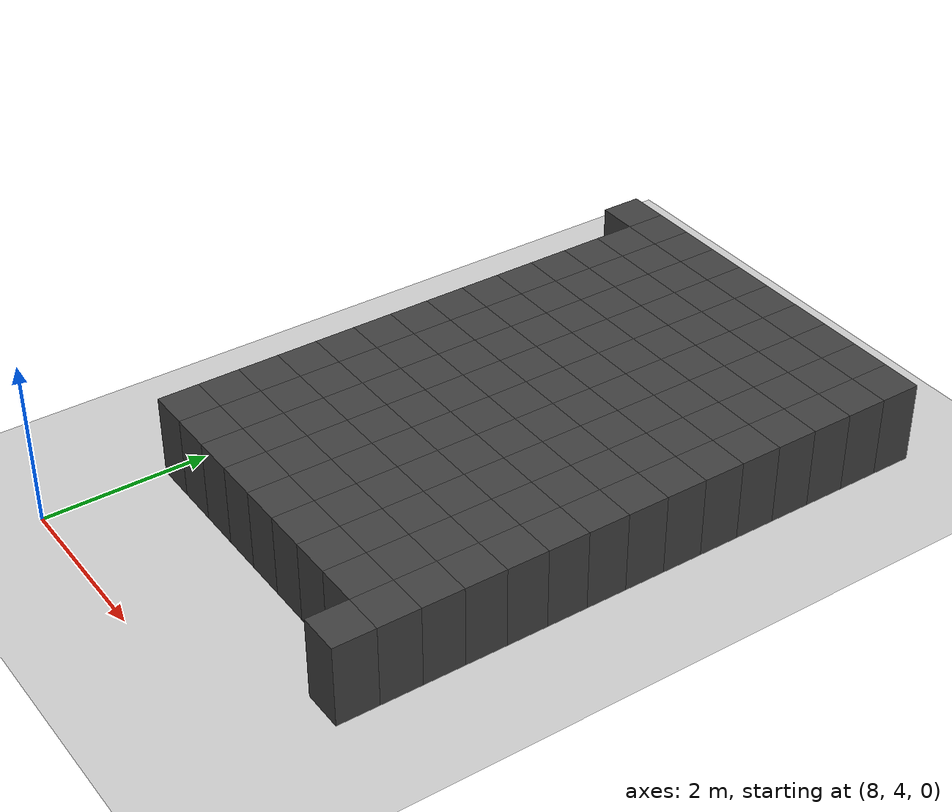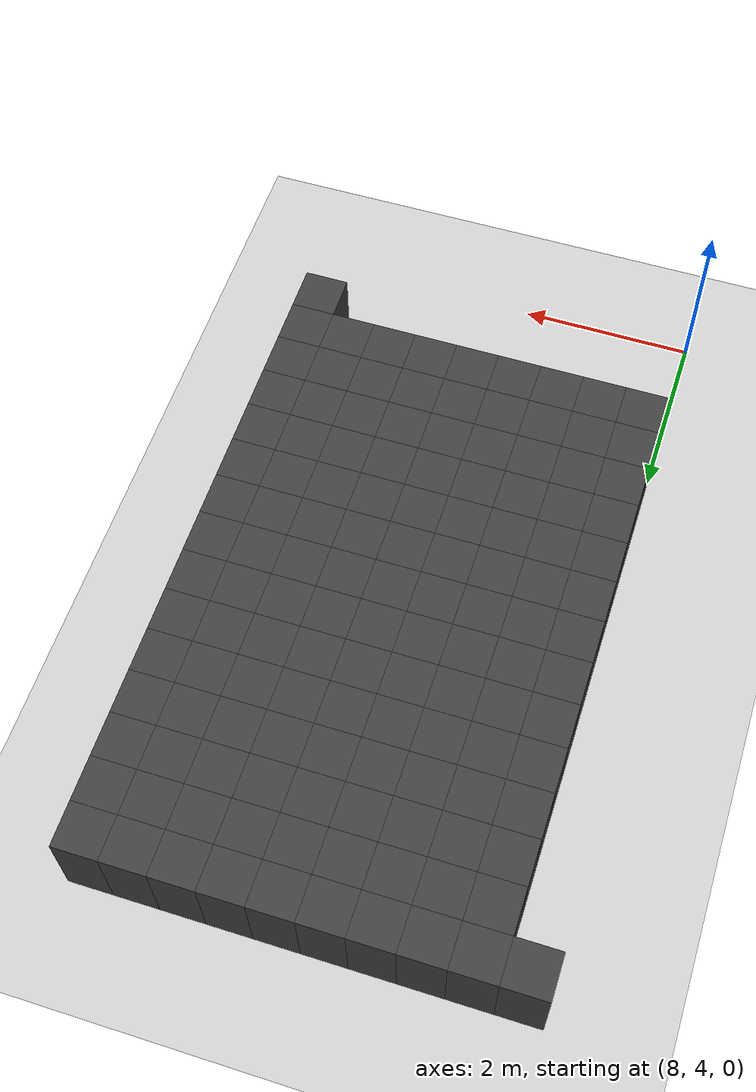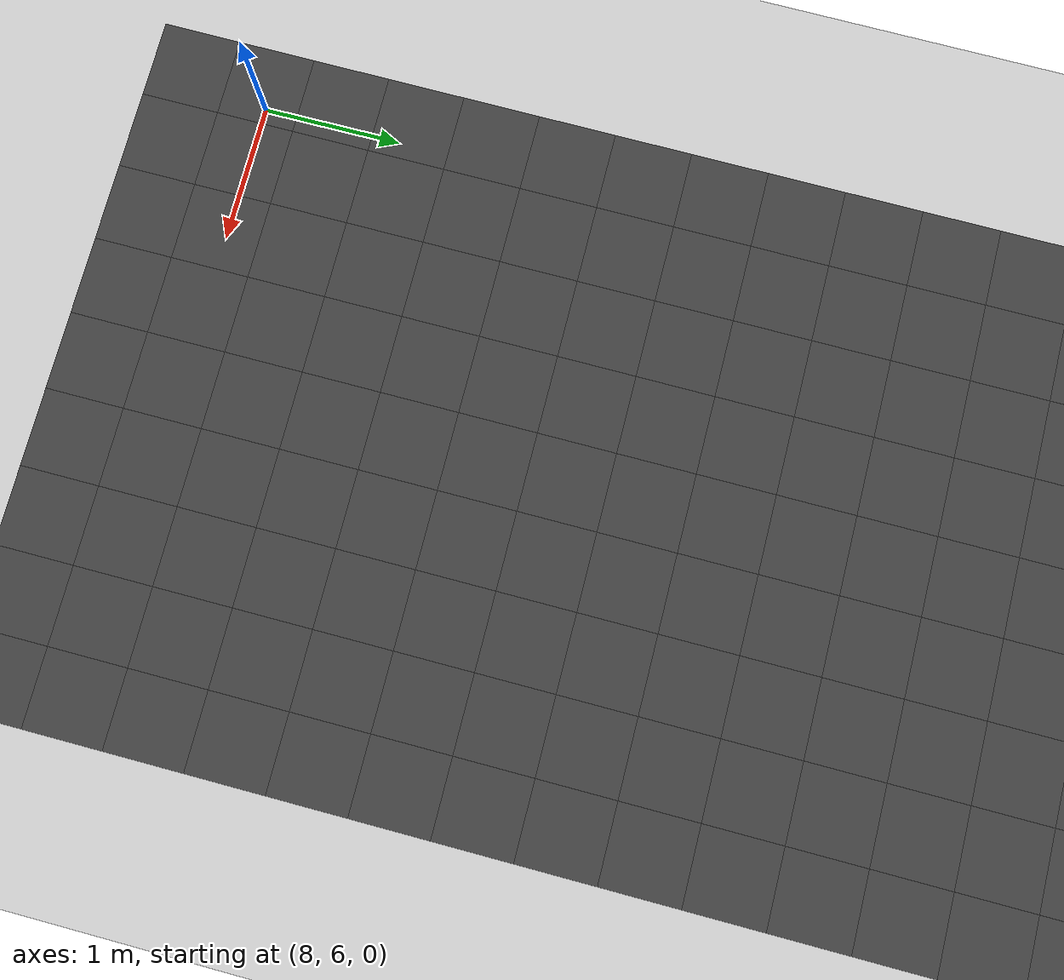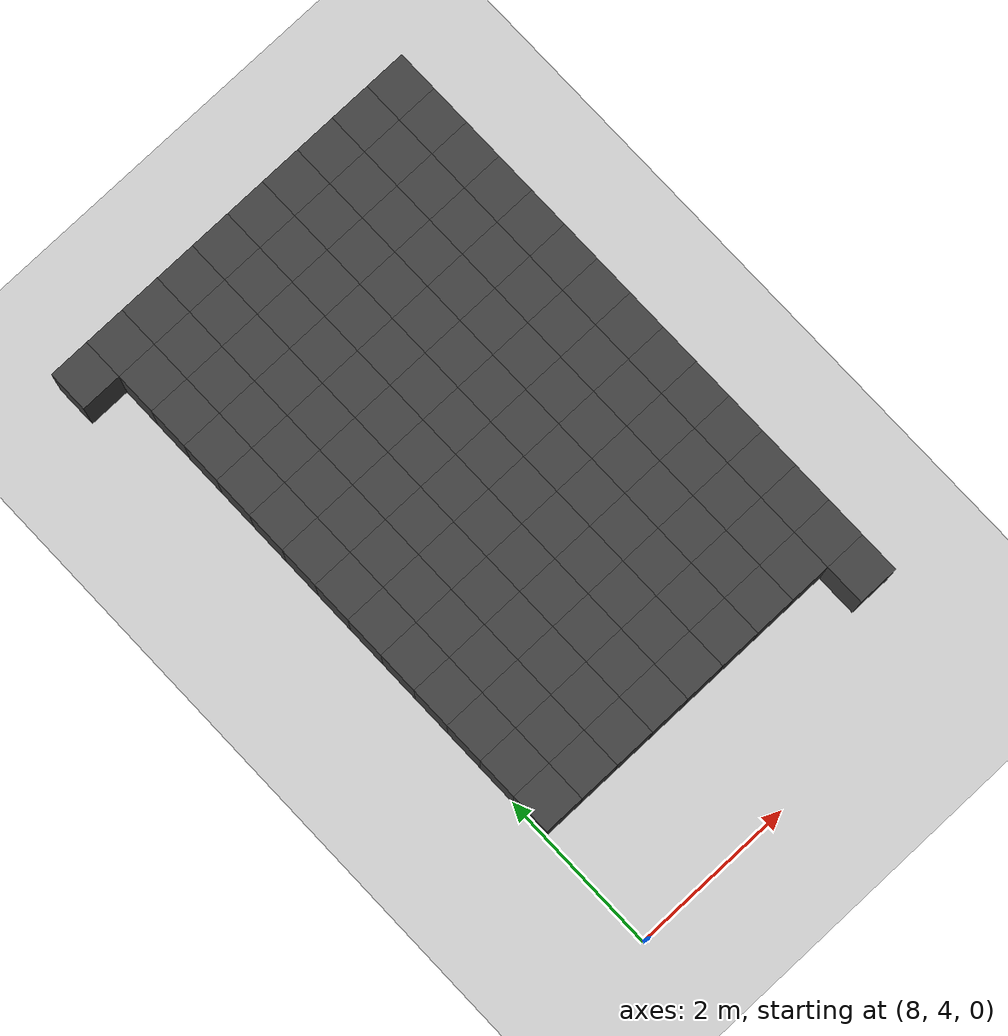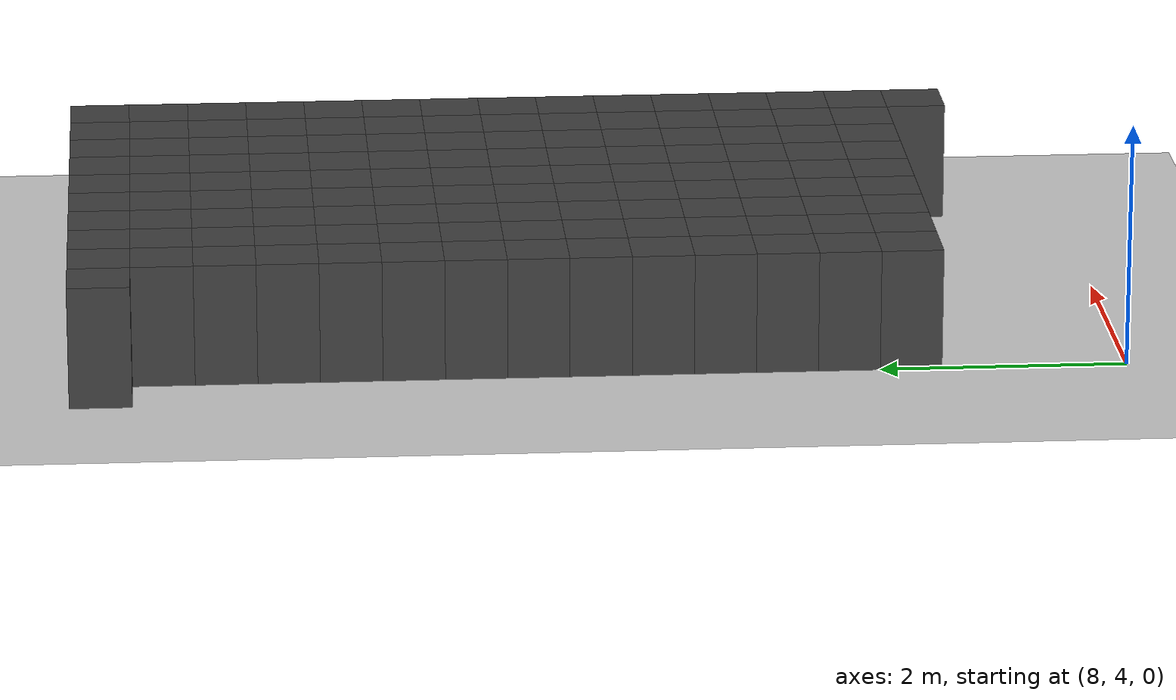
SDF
<sdf version="1.7">
 <world name="map_14735">
  <model name="ground_plane">
   <static>true</static>
   <link name="link">
    <collision name="collision">
     <geometry><plane><normal>0 0 1</normal><size>200 200</size></plane></geometry>
    </collision>
    <visual name="visual">
     <geometry><plane><normal>0 0 1</normal><size>200 200</size></plane></geometry>
     <material><ambient>0.8 0.8 0.8 1</ambient><diffuse>0.8 0.8 0.8 1</diffuse></material>
    </visual>
   </link>
  </model>
  <model name="maze_environment">
   <static>true</static>
   <link name="wall_40">
    <pose>7.750 12.250 0.500 0 0 0</pose>
    <collision name="col"><geometry><box><size>0.5 0.5 1.0</size></box></geometry></collision>
    <visual name="vis">
     <geometry><box><size>0.5 0.5 1.0</size></box></geometry>
     <material><ambient>0.15 0.15 0.15 1</ambient><diffuse>0.25 0.25 0.25 1</diffuse></material>
    </visual>
   </link>
   <link name="wall_41">
    <pose>8.250 12.250 0.500 0 0 0</pose>
    <collision name="col"><geometry><box><size>0.5 0.5 1.0</size></box></geometry></collision>
    <visual name="vis">
     <geometry><box><size>0.5 0.5 1.0</size></box></geometry>
     <material><ambient>0.15 0.15 0.15 1</ambient><diffuse>0.25 0.25 0.25 1</diffuse></material>
    </visual>
   </link>
   <link name="wall_42">
    <pose>8.750 12.250 0.500 0 0 0</pose>
    <collision name="col"><geometry><box><size>0.5 0.5 1.0</size></box></geometry></collision>
    <visual name="vis">
     <geometry><box><size>0.5 0.5 1.0</size></box></geometry>
     <material><ambient>0.15 0.15 0.15 1</ambient><diffuse>0.25 0.25 0.25 1</diffuse></material>
    </visual>
   </link>
   <link name="wall_43">
    <pose>9.250 12.250 0.500 0 0 0</pose>
    <collision name="col"><geometry><box><size>0.5 0.5 1.0</size></box></geometry></collision>
    <visual name="vis">
     <geometry><box><size>0.5 0.5 1.0</size></box></geometry>
     <material><ambient>0.15 0.15 0.15 1</ambient><diffuse>0.25 0.25 0.25 1</diffuse></material>
    </visual>
   </link>
   <link name="wall_44">
    <pose>9.750 12.250 0.500 0 0 0</pose>
    <collision name="col"><geometry><box><size>0.5 0.5 1.0</size></box></geometry></collision>
    <visual name="vis">
     <geometry><box><size>0.5 0.5 1.0</size></box></geometry>
     <material><ambient>0.15 0.15 0.15 1</ambient><diffuse>0.25 0.25 0.25 1</diffuse></material>
    </visual>
   </link>
   <link name="wall_45">
    <pose>10.250 12.250 0.500 0 0 0</pose>
    <collision name="col"><geometry><box><size>0.5 0.5 1.0</size></box></geometry></collision>
    <visual name="vis">
     <geometry><box><size>0.5 0.5 1.0</size></box></geometry>
     <material><ambient>0.15 0.15 0.15 1</ambient><diffuse>0.25 0.25 0.25 1</diffuse></material>
    </visual>
   </link>
   <link name="wall_46">
    <pose>10.750 12.250 0.500 0 0 0</pose>
    <collision name="col"><geometry><box><size>0.5 0.5 1.0</size></box></geometry></collision>
    <visual name="vis">
     <geometry><box><size>0.5 0.5 1.0</size></box></geometry>
     <material><ambient>0.15 0.15 0.15 1</ambient><diffuse>0.25 0.25 0.25 1</diffuse></material>
    </visual>
   </link>
   <link name="wall_47">
    <pose>11.250 12.250 0.500 0 0 0</pose>
    <collision name="col"><geometry><box><size>0.5 0.5 1.0</size></box></geometry></collision>
    <visual name="vis">
     <geometry><box><size>0.5 0.5 1.0</size></box></geometry>
     <material><ambient>0.15 0.15 0.15 1</ambient><diffuse>0.25 0.25 0.25 1</diffuse></material>
    </visual>
   </link>
   <link name="wall_48">
    <pose>11.750 12.250 0.500 0 0 0</pose>
    <collision name="col"><geometry><box><size>0.5 0.5 1.0</size></box></geometry></collision>
    <visual name="vis">
     <geometry><box><size>0.5 0.5 1.0</size></box></geometry>
     <material><ambient>0.15 0.15 0.15 1</ambient><diffuse>0.25 0.25 0.25 1</diffuse></material>
    </visual>
   </link>
   <link name="wall_49">
    <pose>12.250 12.250 0.500 0 0 0</pose>
    <collision name="col"><geometry><box><size>0.5 0.5 1.0</size></box></geometry></collision>
    <visual name="vis">
     <geometry><box><size>0.5 0.5 1.0</size></box></geometry>
     <material><ambient>0.15 0.15 0.15 1</ambient><diffuse>0.25 0.25 0.25 1</diffuse></material>
    </visual>
   </link>
   <link name="wall_83">
    <pose>8.250 11.750 0.500 0 0 0</pose>
    <collision name="col"><geometry><box><size>0.5 0.5 1.0</size></box></geometry></collision>
    <visual name="vis">
     <geometry><box><size>0.5 0.5 1.0</size></box></geometry>
     <material><ambient>0.15 0.15 0.15 1</ambient><diffuse>0.25 0.25 0.25 1</diffuse></material>
    </visual>
   </link>
   <link name="wall_84">
    <pose>8.750 11.750 0.500 0 0 0</pose>
    <collision name="col"><geometry><box><size>0.5 0.5 1.0</size></box></geometry></collision>
    <visual name="vis">
     <geometry><box><size>0.5 0.5 1.0</size></box></geometry>
     <material><ambient>0.15 0.15 0.15 1</ambient><diffuse>0.25 0.25 0.25 1</diffuse></material>
    </visual>
   </link>
   <link name="wall_85">
    <pose>9.250 11.750 0.500 0 0 0</pose>
    <collision name="col"><geometry><box><size>0.5 0.5 1.0</size></box></geometry></collision>
    <visual name="vis">
     <geometry><box><size>0.5 0.5 1.0</size></box></geometry>
     <material><ambient>0.15 0.15 0.15 1</ambient><diffuse>0.25 0.25 0.25 1</diffuse></material>
    </visual>
   </link>
   <link name="wall_86">
    <pose>9.750 11.750 0.500 0 0 0</pose>
    <collision name="col"><geometry><box><size>0.5 0.5 1.0</size></box></geometry></collision>
    <visual name="vis">
     <geometry><box><size>0.5 0.5 1.0</size></box></geometry>
     <material><ambient>0.15 0.15 0.15 1</ambient><diffuse>0.25 0.25 0.25 1</diffuse></material>
    </visual>
   </link>
   <link name="wall_87">
    <pose>10.250 11.750 0.500 0 0 0</pose>
    <collision name="col"><geometry><box><size>0.5 0.5 1.0</size></box></geometry></collision>
    <visual name="vis">
     <geometry><box><size>0.5 0.5 1.0</size></box></geometry>
     <material><ambient>0.15 0.15 0.15 1</ambient><diffuse>0.25 0.25 0.25 1</diffuse></material>
    </visual>
   </link>
   <link name="wall_88">
    <pose>10.750 11.750 0.500 0 0 0</pose>
    <collision name="col"><geometry><box><size>0.5 0.5 1.0</size></box></geometry></collision>
    <visual name="vis">
     <geometry><box><size>0.5 0.5 1.0</size></box></geometry>
     <material><ambient>0.15 0.15 0.15 1</ambient><diffuse>0.25 0.25 0.25 1</diffuse></material>
    </visual>
   </link>
   <link name="wall_89">
    <pose>11.250 11.750 0.500 0 0 0</pose>
    <collision name="col"><geometry><box><size>0.5 0.5 1.0</size></box></geometry></collision>
    <visual name="vis">
     <geometry><box><size>0.5 0.5 1.0</size></box></geometry>
     <material><ambient>0.15 0.15 0.15 1</ambient><diffuse>0.25 0.25 0.25 1</diffuse></material>
    </visual>
   </link>
   <link name="wall_90">
    <pose>11.750 11.750 0.500 0 0 0</pose>
    <collision name="col"><geometry><box><size>0.5 0.5 1.0</size></box></geometry></collision>
    <visual name="vis">
     <geometry><box><size>0.5 0.5 1.0</size></box></geometry>
     <material><ambient>0.15 0.15 0.15 1</ambient><diffuse>0.25 0.25 0.25 1</diffuse></material>
    </visual>
   </link>
   <link name="wall_91">
    <pose>12.250 11.750 0.500 0 0 0</pose>
    <collision name="col"><geometry><box><size>0.5 0.5 1.0</size></box></geometry></collision>
    <visual name="vis">
     <geometry><box><size>0.5 0.5 1.0</size></box></geometry>
     <material><ambient>0.15 0.15 0.15 1</ambient><diffuse>0.25 0.25 0.25 1</diffuse></material>
    </visual>
   </link>
   <link name="wall_125">
    <pose>8.250 11.250 0.500 0 0 0</pose>
    <collision name="col"><geometry><box><size>0.5 0.5 1.0</size></box></geometry></collision>
    <visual name="vis">
     <geometry><box><size>0.5 0.5 1.0</size></box></geometry>
     <material><ambient>0.15 0.15 0.15 1</ambient><diffuse>0.25 0.25 0.25 1</diffuse></material>
    </visual>
   </link>
   <link name="wall_126">
    <pose>8.750 11.250 0.500 0 0 0</pose>
    <collision name="col"><geometry><box><size>0.5 0.5 1.0</size></box></geometry></collision>
    <visual name="vis">
     <geometry><box><size>0.5 0.5 1.0</size></box></geometry>
     <material><ambient>0.15 0.15 0.15 1</ambient><diffuse>0.25 0.25 0.25 1</diffuse></material>
    </visual>
   </link>
   <link name="wall_127">
    <pose>9.250 11.250 0.500 0 0 0</pose>
    <collision name="col"><geometry><box><size>0.5 0.5 1.0</size></box></geometry></collision>
    <visual name="vis">
     <geometry><box><size>0.5 0.5 1.0</size></box></geometry>
     <material><ambient>0.15 0.15 0.15 1</ambient><diffuse>0.25 0.25 0.25 1</diffuse></material>
    </visual>
   </link>
   <link name="wall_128">
    <pose>9.750 11.250 0.500 0 0 0</pose>
    <collision name="col"><geometry><box><size>0.5 0.5 1.0</size></box></geometry></collision>
    <visual name="vis">
     <geometry><box><size>0.5 0.5 1.0</size></box></geometry>
     <material><ambient>0.15 0.15 0.15 1</ambient><diffuse>0.25 0.25 0.25 1</diffuse></material>
    </visual>
   </link>
   <link name="wall_129">
    <pose>10.250 11.250 0.500 0 0 0</pose>
    <collision name="col"><geometry><box><size>0.5 0.5 1.0</size></box></geometry></collision>
    <visual name="vis">
     <geometry><box><size>0.5 0.5 1.0</size></box></geometry>
     <material><ambient>0.15 0.15 0.15 1</ambient><diffuse>0.25 0.25 0.25 1</diffuse></material>
    </visual>
   </link>
   <link name="wall_130">
    <pose>10.750 11.250 0.500 0 0 0</pose>
    <collision name="col"><geometry><box><size>0.5 0.5 1.0</size></box></geometry></collision>
    <visual name="vis">
     <geometry><box><size>0.5 0.5 1.0</size></box></geometry>
     <material><ambient>0.15 0.15 0.15 1</ambient><diffuse>0.25 0.25 0.25 1</diffuse></material>
    </visual>
   </link>
   <link name="wall_131">
    <pose>11.250 11.250 0.500 0 0 0</pose>
    <collision name="col"><geometry><box><size>0.5 0.5 1.0</size></box></geometry></collision>
    <visual name="vis">
     <geometry><box><size>0.5 0.5 1.0</size></box></geometry>
     <material><ambient>0.15 0.15 0.15 1</ambient><diffuse>0.25 0.25 0.25 1</diffuse></material>
    </visual>
   </link>
   <link name="wall_132">
    <pose>11.750 11.250 0.500 0 0 0</pose>
    <collision name="col"><geometry><box><size>0.5 0.5 1.0</size></box></geometry></collision>
    <visual name="vis">
     <geometry><box><size>0.5 0.5 1.0</size></box></geometry>
     <material><ambient>0.15 0.15 0.15 1</ambient><diffuse>0.25 0.25 0.25 1</diffuse></material>
    </visual>
   </link>
   <link name="wall_133">
    <pose>12.250 11.250 0.500 0 0 0</pose>
    <collision name="col"><geometry><box><size>0.5 0.5 1.0</size></box></geometry></collision>
    <visual name="vis">
     <geometry><box><size>0.5 0.5 1.0</size></box></geometry>
     <material><ambient>0.15 0.15 0.15 1</ambient><diffuse>0.25 0.25 0.25 1</diffuse></material>
    </visual>
   </link>
   <link name="wall_159">
    <pose>8.250 10.750 0.500 0 0 0</pose>
    <collision name="col"><geometry><box><size>0.5 0.5 1.0</size></box></geometry></collision>
    <visual name="vis">
     <geometry><box><size>0.5 0.5 1.0</size></box></geometry>
     <material><ambient>0.15 0.15 0.15 1</ambient><diffuse>0.25 0.25 0.25 1</diffuse></material>
    </visual>
   </link>
   <link name="wall_160">
    <pose>8.750 10.750 0.500 0 0 0</pose>
    <collision name="col"><geometry><box><size>0.5 0.5 1.0</size></box></geometry></collision>
    <visual name="vis">
     <geometry><box><size>0.5 0.5 1.0</size></box></geometry>
     <material><ambient>0.15 0.15 0.15 1</ambient><diffuse>0.25 0.25 0.25 1</diffuse></material>
    </visual>
   </link>
   <link name="wall_161">
    <pose>9.250 10.750 0.500 0 0 0</pose>
    <collision name="col"><geometry><box><size>0.5 0.5 1.0</size></box></geometry></collision>
    <visual name="vis">
     <geometry><box><size>0.5 0.5 1.0</size></box></geometry>
     <material><ambient>0.15 0.15 0.15 1</ambient><diffuse>0.25 0.25 0.25 1</diffuse></material>
    </visual>
   </link>
   <link name="wall_162">
    <pose>9.750 10.750 0.500 0 0 0</pose>
    <collision name="col"><geometry><box><size>0.5 0.5 1.0</size></box></geometry></collision>
    <visual name="vis">
     <geometry><box><size>0.5 0.5 1.0</size></box></geometry>
     <material><ambient>0.15 0.15 0.15 1</ambient><diffuse>0.25 0.25 0.25 1</diffuse></material>
    </visual>
   </link>
   <link name="wall_163">
    <pose>10.250 10.750 0.500 0 0 0</pose>
    <collision name="col"><geometry><box><size>0.5 0.5 1.0</size></box></geometry></collision>
    <visual name="vis">
     <geometry><box><size>0.5 0.5 1.0</size></box></geometry>
     <material><ambient>0.15 0.15 0.15 1</ambient><diffuse>0.25 0.25 0.25 1</diffuse></material>
    </visual>
   </link>
   <link name="wall_164">
    <pose>10.750 10.750 0.500 0 0 0</pose>
    <collision name="col"><geometry><box><size>0.5 0.5 1.0</size></box></geometry></collision>
    <visual name="vis">
     <geometry><box><size>0.5 0.5 1.0</size></box></geometry>
     <material><ambient>0.15 0.15 0.15 1</ambient><diffuse>0.25 0.25 0.25 1</diffuse></material>
    </visual>
   </link>
   <link name="wall_165">
    <pose>11.250 10.750 0.500 0 0 0</pose>
    <collision name="col"><geometry><box><size>0.5 0.5 1.0</size></box></geometry></collision>
    <visual name="vis">
     <geometry><box><size>0.5 0.5 1.0</size></box></geometry>
     <material><ambient>0.15 0.15 0.15 1</ambient><diffuse>0.25 0.25 0.25 1</diffuse></material>
    </visual>
   </link>
   <link name="wall_166">
    <pose>11.750 10.750 0.500 0 0 0</pose>
    <collision name="col"><geometry><box><size>0.5 0.5 1.0</size></box></geometry></collision>
    <visual name="vis">
     <geometry><box><size>0.5 0.5 1.0</size></box></geometry>
     <material><ambient>0.15 0.15 0.15 1</ambient><diffuse>0.25 0.25 0.25 1</diffuse></material>
    </visual>
   </link>
   <link name="wall_167">
    <pose>12.250 10.750 0.500 0 0 0</pose>
    <collision name="col"><geometry><box><size>0.5 0.5 1.0</size></box></geometry></collision>
    <visual name="vis">
     <geometry><box><size>0.5 0.5 1.0</size></box></geometry>
     <material><ambient>0.15 0.15 0.15 1</ambient><diffuse>0.25 0.25 0.25 1</diffuse></material>
    </visual>
   </link>
   <link name="wall_188">
    <pose>8.250 10.250 0.500 0 0 0</pose>
    <collision name="col"><geometry><box><size>0.5 0.5 1.0</size></box></geometry></collision>
    <visual name="vis">
     <geometry><box><size>0.5 0.5 1.0</size></box></geometry>
     <material><ambient>0.15 0.15 0.15 1</ambient><diffuse>0.25 0.25 0.25 1</diffuse></material>
    </visual>
   </link>
   <link name="wall_189">
    <pose>8.750 10.250 0.500 0 0 0</pose>
    <collision name="col"><geometry><box><size>0.5 0.5 1.0</size></box></geometry></collision>
    <visual name="vis">
     <geometry><box><size>0.5 0.5 1.0</size></box></geometry>
     <material><ambient>0.15 0.15 0.15 1</ambient><diffuse>0.25 0.25 0.25 1</diffuse></material>
    </visual>
   </link>
   <link name="wall_190">
    <pose>9.250 10.250 0.500 0 0 0</pose>
    <collision name="col"><geometry><box><size>0.5 0.5 1.0</size></box></geometry></collision>
    <visual name="vis">
     <geometry><box><size>0.5 0.5 1.0</size></box></geometry>
     <material><ambient>0.15 0.15 0.15 1</ambient><diffuse>0.25 0.25 0.25 1</diffuse></material>
    </visual>
   </link>
   <link name="wall_191">
    <pose>9.750 10.250 0.500 0 0 0</pose>
    <collision name="col"><geometry><box><size>0.5 0.5 1.0</size></box></geometry></collision>
    <visual name="vis">
     <geometry><box><size>0.5 0.5 1.0</size></box></geometry>
     <material><ambient>0.15 0.15 0.15 1</ambient><diffuse>0.25 0.25 0.25 1</diffuse></material>
    </visual>
   </link>
   <link name="wall_192">
    <pose>10.250 10.250 0.500 0 0 0</pose>
    <collision name="col"><geometry><box><size>0.5 0.5 1.0</size></box></geometry></collision>
    <visual name="vis">
     <geometry><box><size>0.5 0.5 1.0</size></box></geometry>
     <material><ambient>0.15 0.15 0.15 1</ambient><diffuse>0.25 0.25 0.25 1</diffuse></material>
    </visual>
   </link>
   <link name="wall_193">
    <pose>10.750 10.250 0.500 0 0 0</pose>
    <collision name="col"><geometry><box><size>0.5 0.5 1.0</size></box></geometry></collision>
    <visual name="vis">
     <geometry><box><size>0.5 0.5 1.0</size></box></geometry>
     <material><ambient>0.15 0.15 0.15 1</ambient><diffuse>0.25 0.25 0.25 1</diffuse></material>
    </visual>
   </link>
   <link name="wall_194">
    <pose>11.250 10.250 0.500 0 0 0</pose>
    <collision name="col"><geometry><box><size>0.5 0.5 1.0</size></box></geometry></collision>
    <visual name="vis">
     <geometry><box><size>0.5 0.5 1.0</size></box></geometry>
     <material><ambient>0.15 0.15 0.15 1</ambient><diffuse>0.25 0.25 0.25 1</diffuse></material>
    </visual>
   </link>
   <link name="wall_195">
    <pose>11.750 10.250 0.500 0 0 0</pose>
    <collision name="col"><geometry><box><size>0.5 0.5 1.0</size></box></geometry></collision>
    <visual name="vis">
     <geometry><box><size>0.5 0.5 1.0</size></box></geometry>
     <material><ambient>0.15 0.15 0.15 1</ambient><diffuse>0.25 0.25 0.25 1</diffuse></material>
    </visual>
   </link>
   <link name="wall_196">
    <pose>12.250 10.250 0.500 0 0 0</pose>
    <collision name="col"><geometry><box><size>0.5 0.5 1.0</size></box></geometry></collision>
    <visual name="vis">
     <geometry><box><size>0.5 0.5 1.0</size></box></geometry>
     <material><ambient>0.15 0.15 0.15 1</ambient><diffuse>0.25 0.25 0.25 1</diffuse></material>
    </visual>
   </link>
   <link name="wall_210">
    <pose>8.250 9.750 0.500 0 0 0</pose>
    <collision name="col"><geometry><box><size>0.5 0.5 1.0</size></box></geometry></collision>
    <visual name="vis">
     <geometry><box><size>0.5 0.5 1.0</size></box></geometry>
     <material><ambient>0.15 0.15 0.15 1</ambient><diffuse>0.25 0.25 0.25 1</diffuse></material>
    </visual>
   </link>
   <link name="wall_211">
    <pose>8.750 9.750 0.500 0 0 0</pose>
    <collision name="col"><geometry><box><size>0.5 0.5 1.0</size></box></geometry></collision>
    <visual name="vis">
     <geometry><box><size>0.5 0.5 1.0</size></box></geometry>
     <material><ambient>0.15 0.15 0.15 1</ambient><diffuse>0.25 0.25 0.25 1</diffuse></material>
    </visual>
   </link>
   <link name="wall_212">
    <pose>9.250 9.750 0.500 0 0 0</pose>
    <collision name="col"><geometry><box><size>0.5 0.5 1.0</size></box></geometry></collision>
    <visual name="vis">
     <geometry><box><size>0.5 0.5 1.0</size></box></geometry>
     <material><ambient>0.15 0.15 0.15 1</ambient><diffuse>0.25 0.25 0.25 1</diffuse></material>
    </visual>
   </link>
   <link name="wall_213">
    <pose>9.750 9.750 0.500 0 0 0</pose>
    <collision name="col"><geometry><box><size>0.5 0.5 1.0</size></box></geometry></collision>
    <visual name="vis">
     <geometry><box><size>0.5 0.5 1.0</size></box></geometry>
     <material><ambient>0.15 0.15 0.15 1</ambient><diffuse>0.25 0.25 0.25 1</diffuse></material>
    </visual>
   </link>
   <link name="wall_214">
    <pose>10.250 9.750 0.500 0 0 0</pose>
    <collision name="col"><geometry><box><size>0.5 0.5 1.0</size></box></geometry></collision>
    <visual name="vis">
     <geometry><box><size>0.5 0.5 1.0</size></box></geometry>
     <material><ambient>0.15 0.15 0.15 1</ambient><diffuse>0.25 0.25 0.25 1</diffuse></material>
    </visual>
   </link>
   <link name="wall_215">
    <pose>10.750 9.750 0.500 0 0 0</pose>
    <collision name="col"><geometry><box><size>0.5 0.5 1.0</size></box></geometry></collision>
    <visual name="vis">
     <geometry><box><size>0.5 0.5 1.0</size></box></geometry>
     <material><ambient>0.15 0.15 0.15 1</ambient><diffuse>0.25 0.25 0.25 1</diffuse></material>
    </visual>
   </link>
   <link name="wall_216">
    <pose>11.250 9.750 0.500 0 0 0</pose>
    <collision name="col"><geometry><box><size>0.5 0.5 1.0</size></box></geometry></collision>
    <visual name="vis">
     <geometry><box><size>0.5 0.5 1.0</size></box></geometry>
     <material><ambient>0.15 0.15 0.15 1</ambient><diffuse>0.25 0.25 0.25 1</diffuse></material>
    </visual>
   </link>
   <link name="wall_217">
    <pose>11.750 9.750 0.500 0 0 0</pose>
    <collision name="col"><geometry><box><size>0.5 0.5 1.0</size></box></geometry></collision>
    <visual name="vis">
     <geometry><box><size>0.5 0.5 1.0</size></box></geometry>
     <material><ambient>0.15 0.15 0.15 1</ambient><diffuse>0.25 0.25 0.25 1</diffuse></material>
    </visual>
   </link>
   <link name="wall_218">
    <pose>12.250 9.750 0.500 0 0 0</pose>
    <collision name="col"><geometry><box><size>0.5 0.5 1.0</size></box></geometry></collision>
    <visual name="vis">
     <geometry><box><size>0.5 0.5 1.0</size></box></geometry>
     <material><ambient>0.15 0.15 0.15 1</ambient><diffuse>0.25 0.25 0.25 1</diffuse></material>
    </visual>
   </link>
   <link name="wall_231">
    <pose>8.250 9.250 0.500 0 0 0</pose>
    <collision name="col"><geometry><box><size>0.5 0.5 1.0</size></box></geometry></collision>
    <visual name="vis">
     <geometry><box><size>0.5 0.5 1.0</size></box></geometry>
     <material><ambient>0.15 0.15 0.15 1</ambient><diffuse>0.25 0.25 0.25 1</diffuse></material>
    </visual>
   </link>
   <link name="wall_232">
    <pose>8.750 9.250 0.500 0 0 0</pose>
    <collision name="col"><geometry><box><size>0.5 0.5 1.0</size></box></geometry></collision>
    <visual name="vis">
     <geometry><box><size>0.5 0.5 1.0</size></box></geometry>
     <material><ambient>0.15 0.15 0.15 1</ambient><diffuse>0.25 0.25 0.25 1</diffuse></material>
    </visual>
   </link>
   <link name="wall_233">
    <pose>9.250 9.250 0.500 0 0 0</pose>
    <collision name="col"><geometry><box><size>0.5 0.5 1.0</size></box></geometry></collision>
    <visual name="vis">
     <geometry><box><size>0.5 0.5 1.0</size></box></geometry>
     <material><ambient>0.15 0.15 0.15 1</ambient><diffuse>0.25 0.25 0.25 1</diffuse></material>
    </visual>
   </link>
   <link name="wall_234">
    <pose>9.750 9.250 0.500 0 0 0</pose>
    <collision name="col"><geometry><box><size>0.5 0.5 1.0</size></box></geometry></collision>
    <visual name="vis">
     <geometry><box><size>0.5 0.5 1.0</size></box></geometry>
     <material><ambient>0.15 0.15 0.15 1</ambient><diffuse>0.25 0.25 0.25 1</diffuse></material>
    </visual>
   </link>
   <link name="wall_235">
    <pose>10.250 9.250 0.500 0 0 0</pose>
    <collision name="col"><geometry><box><size>0.5 0.5 1.0</size></box></geometry></collision>
    <visual name="vis">
     <geometry><box><size>0.5 0.5 1.0</size></box></geometry>
     <material><ambient>0.15 0.15 0.15 1</ambient><diffuse>0.25 0.25 0.25 1</diffuse></material>
    </visual>
   </link>
   <link name="wall_236">
    <pose>10.750 9.250 0.500 0 0 0</pose>
    <collision name="col"><geometry><box><size>0.5 0.5 1.0</size></box></geometry></collision>
    <visual name="vis">
     <geometry><box><size>0.5 0.5 1.0</size></box></geometry>
     <material><ambient>0.15 0.15 0.15 1</ambient><diffuse>0.25 0.25 0.25 1</diffuse></material>
    </visual>
   </link>
   <link name="wall_237">
    <pose>11.250 9.250 0.500 0 0 0</pose>
    <collision name="col"><geometry><box><size>0.5 0.5 1.0</size></box></geometry></collision>
    <visual name="vis">
     <geometry><box><size>0.5 0.5 1.0</size></box></geometry>
     <material><ambient>0.15 0.15 0.15 1</ambient><diffuse>0.25 0.25 0.25 1</diffuse></material>
    </visual>
   </link>
   <link name="wall_238">
    <pose>11.750 9.250 0.500 0 0 0</pose>
    <collision name="col"><geometry><box><size>0.5 0.5 1.0</size></box></geometry></collision>
    <visual name="vis">
     <geometry><box><size>0.5 0.5 1.0</size></box></geometry>
     <material><ambient>0.15 0.15 0.15 1</ambient><diffuse>0.25 0.25 0.25 1</diffuse></material>
    </visual>
   </link>
   <link name="wall_239">
    <pose>12.250 9.250 0.500 0 0 0</pose>
    <collision name="col"><geometry><box><size>0.5 0.5 1.0</size></box></geometry></collision>
    <visual name="vis">
     <geometry><box><size>0.5 0.5 1.0</size></box></geometry>
     <material><ambient>0.15 0.15 0.15 1</ambient><diffuse>0.25 0.25 0.25 1</diffuse></material>
    </visual>
   </link>
   <link name="wall_253">
    <pose>8.250 8.750 0.500 0 0 0</pose>
    <collision name="col"><geometry><box><size>0.5 0.5 1.0</size></box></geometry></collision>
    <visual name="vis">
     <geometry><box><size>0.5 0.5 1.0</size></box></geometry>
     <material><ambient>0.15 0.15 0.15 1</ambient><diffuse>0.25 0.25 0.25 1</diffuse></material>
    </visual>
   </link>
   <link name="wall_254">
    <pose>8.750 8.750 0.500 0 0 0</pose>
    <collision name="col"><geometry><box><size>0.5 0.5 1.0</size></box></geometry></collision>
    <visual name="vis">
     <geometry><box><size>0.5 0.5 1.0</size></box></geometry>
     <material><ambient>0.15 0.15 0.15 1</ambient><diffuse>0.25 0.25 0.25 1</diffuse></material>
    </visual>
   </link>
   <link name="wall_255">
    <pose>9.250 8.750 0.500 0 0 0</pose>
    <collision name="col"><geometry><box><size>0.5 0.5 1.0</size></box></geometry></collision>
    <visual name="vis">
     <geometry><box><size>0.5 0.5 1.0</size></box></geometry>
     <material><ambient>0.15 0.15 0.15 1</ambient><diffuse>0.25 0.25 0.25 1</diffuse></material>
    </visual>
   </link>
   <link name="wall_256">
    <pose>9.750 8.750 0.500 0 0 0</pose>
    <collision name="col"><geometry><box><size>0.5 0.5 1.0</size></box></geometry></collision>
    <visual name="vis">
     <geometry><box><size>0.5 0.5 1.0</size></box></geometry>
     <material><ambient>0.15 0.15 0.15 1</ambient><diffuse>0.25 0.25 0.25 1</diffuse></material>
    </visual>
   </link>
   <link name="wall_257">
    <pose>10.250 8.750 0.500 0 0 0</pose>
    <collision name="col"><geometry><box><size>0.5 0.5 1.0</size></box></geometry></collision>
    <visual name="vis">
     <geometry><box><size>0.5 0.5 1.0</size></box></geometry>
     <material><ambient>0.15 0.15 0.15 1</ambient><diffuse>0.25 0.25 0.25 1</diffuse></material>
    </visual>
   </link>
   <link name="wall_258">
    <pose>10.750 8.750 0.500 0 0 0</pose>
    <collision name="col"><geometry><box><size>0.5 0.5 1.0</size></box></geometry></collision>
    <visual name="vis">
     <geometry><box><size>0.5 0.5 1.0</size></box></geometry>
     <material><ambient>0.15 0.15 0.15 1</ambient><diffuse>0.25 0.25 0.25 1</diffuse></material>
    </visual>
   </link>
   <link name="wall_259">
    <pose>11.250 8.750 0.500 0 0 0</pose>
    <collision name="col"><geometry><box><size>0.5 0.5 1.0</size></box></geometry></collision>
    <visual name="vis">
     <geometry><box><size>0.5 0.5 1.0</size></box></geometry>
     <material><ambient>0.15 0.15 0.15 1</ambient><diffuse>0.25 0.25 0.25 1</diffuse></material>
    </visual>
   </link>
   <link name="wall_260">
    <pose>11.750 8.750 0.500 0 0 0</pose>
    <collision name="col"><geometry><box><size>0.5 0.5 1.0</size></box></geometry></collision>
    <visual name="vis">
     <geometry><box><size>0.5 0.5 1.0</size></box></geometry>
     <material><ambient>0.15 0.15 0.15 1</ambient><diffuse>0.25 0.25 0.25 1</diffuse></material>
    </visual>
   </link>
   <link name="wall_261">
    <pose>12.250 8.750 0.500 0 0 0</pose>
    <collision name="col"><geometry><box><size>0.5 0.5 1.0</size></box></geometry></collision>
    <visual name="vis">
     <geometry><box><size>0.5 0.5 1.0</size></box></geometry>
     <material><ambient>0.15 0.15 0.15 1</ambient><diffuse>0.25 0.25 0.25 1</diffuse></material>
    </visual>
   </link>
   <link name="wall_273">
    <pose>8.250 8.250 0.500 0 0 0</pose>
    <collision name="col"><geometry><box><size>0.5 0.5 1.0</size></box></geometry></collision>
    <visual name="vis">
     <geometry><box><size>0.5 0.5 1.0</size></box></geometry>
     <material><ambient>0.15 0.15 0.15 1</ambient><diffuse>0.25 0.25 0.25 1</diffuse></material>
    </visual>
   </link>
   <link name="wall_274">
    <pose>8.750 8.250 0.500 0 0 0</pose>
    <collision name="col"><geometry><box><size>0.5 0.5 1.0</size></box></geometry></collision>
    <visual name="vis">
     <geometry><box><size>0.5 0.5 1.0</size></box></geometry>
     <material><ambient>0.15 0.15 0.15 1</ambient><diffuse>0.25 0.25 0.25 1</diffuse></material>
    </visual>
   </link>
   <link name="wall_275">
    <pose>9.250 8.250 0.500 0 0 0</pose>
    <collision name="col"><geometry><box><size>0.5 0.5 1.0</size></box></geometry></collision>
    <visual name="vis">
     <geometry><box><size>0.5 0.5 1.0</size></box></geometry>
     <material><ambient>0.15 0.15 0.15 1</ambient><diffuse>0.25 0.25 0.25 1</diffuse></material>
    </visual>
   </link>
   <link name="wall_276">
    <pose>9.750 8.250 0.500 0 0 0</pose>
    <collision name="col"><geometry><box><size>0.5 0.5 1.0</size></box></geometry></collision>
    <visual name="vis">
     <geometry><box><size>0.5 0.5 1.0</size></box></geometry>
     <material><ambient>0.15 0.15 0.15 1</ambient><diffuse>0.25 0.25 0.25 1</diffuse></material>
    </visual>
   </link>
   <link name="wall_277">
    <pose>10.250 8.250 0.500 0 0 0</pose>
    <collision name="col"><geometry><box><size>0.5 0.5 1.0</size></box></geometry></collision>
    <visual name="vis">
     <geometry><box><size>0.5 0.5 1.0</size></box></geometry>
     <material><ambient>0.15 0.15 0.15 1</ambient><diffuse>0.25 0.25 0.25 1</diffuse></material>
    </visual>
   </link>
   <link name="wall_278">
    <pose>10.750 8.250 0.500 0 0 0</pose>
    <collision name="col"><geometry><box><size>0.5 0.5 1.0</size></box></geometry></collision>
    <visual name="vis">
     <geometry><box><size>0.5 0.5 1.0</size></box></geometry>
     <material><ambient>0.15 0.15 0.15 1</ambient><diffuse>0.25 0.25 0.25 1</diffuse></material>
    </visual>
   </link>
   <link name="wall_279">
    <pose>11.250 8.250 0.500 0 0 0</pose>
    <collision name="col"><geometry><box><size>0.5 0.5 1.0</size></box></geometry></collision>
    <visual name="vis">
     <geometry><box><size>0.5 0.5 1.0</size></box></geometry>
     <material><ambient>0.15 0.15 0.15 1</ambient><diffuse>0.25 0.25 0.25 1</diffuse></material>
    </visual>
   </link>
   <link name="wall_280">
    <pose>11.750 8.250 0.500 0 0 0</pose>
    <collision name="col"><geometry><box><size>0.5 0.5 1.0</size></box></geometry></collision>
    <visual name="vis">
     <geometry><box><size>0.5 0.5 1.0</size></box></geometry>
     <material><ambient>0.15 0.15 0.15 1</ambient><diffuse>0.25 0.25 0.25 1</diffuse></material>
    </visual>
   </link>
   <link name="wall_281">
    <pose>12.250 8.250 0.500 0 0 0</pose>
    <collision name="col"><geometry><box><size>0.5 0.5 1.0</size></box></geometry></collision>
    <visual name="vis">
     <geometry><box><size>0.5 0.5 1.0</size></box></geometry>
     <material><ambient>0.15 0.15 0.15 1</ambient><diffuse>0.25 0.25 0.25 1</diffuse></material>
    </visual>
   </link>
   <link name="wall_295">
    <pose>8.250 7.750 0.500 0 0 0</pose>
    <collision name="col"><geometry><box><size>0.5 0.5 1.0</size></box></geometry></collision>
    <visual name="vis">
     <geometry><box><size>0.5 0.5 1.0</size></box></geometry>
     <material><ambient>0.15 0.15 0.15 1</ambient><diffuse>0.25 0.25 0.25 1</diffuse></material>
    </visual>
   </link>
   <link name="wall_296">
    <pose>8.750 7.750 0.500 0 0 0</pose>
    <collision name="col"><geometry><box><size>0.5 0.5 1.0</size></box></geometry></collision>
    <visual name="vis">
     <geometry><box><size>0.5 0.5 1.0</size></box></geometry>
     <material><ambient>0.15 0.15 0.15 1</ambient><diffuse>0.25 0.25 0.25 1</diffuse></material>
    </visual>
   </link>
   <link name="wall_297">
    <pose>9.250 7.750 0.500 0 0 0</pose>
    <collision name="col"><geometry><box><size>0.5 0.5 1.0</size></box></geometry></collision>
    <visual name="vis">
     <geometry><box><size>0.5 0.5 1.0</size></box></geometry>
     <material><ambient>0.15 0.15 0.15 1</ambient><diffuse>0.25 0.25 0.25 1</diffuse></material>
    </visual>
   </link>
   <link name="wall_298">
    <pose>9.750 7.750 0.500 0 0 0</pose>
    <collision name="col"><geometry><box><size>0.5 0.5 1.0</size></box></geometry></collision>
    <visual name="vis">
     <geometry><box><size>0.5 0.5 1.0</size></box></geometry>
     <material><ambient>0.15 0.15 0.15 1</ambient><diffuse>0.25 0.25 0.25 1</diffuse></material>
    </visual>
   </link>
   <link name="wall_299">
    <pose>10.250 7.750 0.500 0 0 0</pose>
    <collision name="col"><geometry><box><size>0.5 0.5 1.0</size></box></geometry></collision>
    <visual name="vis">
     <geometry><box><size>0.5 0.5 1.0</size></box></geometry>
     <material><ambient>0.15 0.15 0.15 1</ambient><diffuse>0.25 0.25 0.25 1</diffuse></material>
    </visual>
   </link>
   <link name="wall_300">
    <pose>10.750 7.750 0.500 0 0 0</pose>
    <collision name="col"><geometry><box><size>0.5 0.5 1.0</size></box></geometry></collision>
    <visual name="vis">
     <geometry><box><size>0.5 0.5 1.0</size></box></geometry>
     <material><ambient>0.15 0.15 0.15 1</ambient><diffuse>0.25 0.25 0.25 1</diffuse></material>
    </visual>
   </link>
   <link name="wall_301">
    <pose>11.250 7.750 0.500 0 0 0</pose>
    <collision name="col"><geometry><box><size>0.5 0.5 1.0</size></box></geometry></collision>
    <visual name="vis">
     <geometry><box><size>0.5 0.5 1.0</size></box></geometry>
     <material><ambient>0.15 0.15 0.15 1</ambient><diffuse>0.25 0.25 0.25 1</diffuse></material>
    </visual>
   </link>
   <link name="wall_302">
    <pose>11.750 7.750 0.500 0 0 0</pose>
    <collision name="col"><geometry><box><size>0.5 0.5 1.0</size></box></geometry></collision>
    <visual name="vis">
     <geometry><box><size>0.5 0.5 1.0</size></box></geometry>
     <material><ambient>0.15 0.15 0.15 1</ambient><diffuse>0.25 0.25 0.25 1</diffuse></material>
    </visual>
   </link>
   <link name="wall_303">
    <pose>12.250 7.750 0.500 0 0 0</pose>
    <collision name="col"><geometry><box><size>0.5 0.5 1.0</size></box></geometry></collision>
    <visual name="vis">
     <geometry><box><size>0.5 0.5 1.0</size></box></geometry>
     <material><ambient>0.15 0.15 0.15 1</ambient><diffuse>0.25 0.25 0.25 1</diffuse></material>
    </visual>
   </link>
   <link name="wall_317">
    <pose>8.250 7.250 0.500 0 0 0</pose>
    <collision name="col"><geometry><box><size>0.5 0.5 1.0</size></box></geometry></collision>
    <visual name="vis">
     <geometry><box><size>0.5 0.5 1.0</size></box></geometry>
     <material><ambient>0.15 0.15 0.15 1</ambient><diffuse>0.25 0.25 0.25 1</diffuse></material>
    </visual>
   </link>
   <link name="wall_318">
    <pose>8.750 7.250 0.500 0 0 0</pose>
    <collision name="col"><geometry><box><size>0.5 0.5 1.0</size></box></geometry></collision>
    <visual name="vis">
     <geometry><box><size>0.5 0.5 1.0</size></box></geometry>
     <material><ambient>0.15 0.15 0.15 1</ambient><diffuse>0.25 0.25 0.25 1</diffuse></material>
    </visual>
   </link>
   <link name="wall_319">
    <pose>9.250 7.250 0.500 0 0 0</pose>
    <collision name="col"><geometry><box><size>0.5 0.5 1.0</size></box></geometry></collision>
    <visual name="vis">
     <geometry><box><size>0.5 0.5 1.0</size></box></geometry>
     <material><ambient>0.15 0.15 0.15 1</ambient><diffuse>0.25 0.25 0.25 1</diffuse></material>
    </visual>
   </link>
   <link name="wall_320">
    <pose>9.750 7.250 0.500 0 0 0</pose>
    <collision name="col"><geometry><box><size>0.5 0.5 1.0</size></box></geometry></collision>
    <visual name="vis">
     <geometry><box><size>0.5 0.5 1.0</size></box></geometry>
     <material><ambient>0.15 0.15 0.15 1</ambient><diffuse>0.25 0.25 0.25 1</diffuse></material>
    </visual>
   </link>
   <link name="wall_321">
    <pose>10.250 7.250 0.500 0 0 0</pose>
    <collision name="col"><geometry><box><size>0.5 0.5 1.0</size></box></geometry></collision>
    <visual name="vis">
     <geometry><box><size>0.5 0.5 1.0</size></box></geometry>
     <material><ambient>0.15 0.15 0.15 1</ambient><diffuse>0.25 0.25 0.25 1</diffuse></material>
    </visual>
   </link>
   <link name="wall_322">
    <pose>10.750 7.250 0.500 0 0 0</pose>
    <collision name="col"><geometry><box><size>0.5 0.5 1.0</size></box></geometry></collision>
    <visual name="vis">
     <geometry><box><size>0.5 0.5 1.0</size></box></geometry>
     <material><ambient>0.15 0.15 0.15 1</ambient><diffuse>0.25 0.25 0.25 1</diffuse></material>
    </visual>
   </link>
   <link name="wall_323">
    <pose>11.250 7.250 0.500 0 0 0</pose>
    <collision name="col"><geometry><box><size>0.5 0.5 1.0</size></box></geometry></collision>
    <visual name="vis">
     <geometry><box><size>0.5 0.5 1.0</size></box></geometry>
     <material><ambient>0.15 0.15 0.15 1</ambient><diffuse>0.25 0.25 0.25 1</diffuse></material>
    </visual>
   </link>
   <link name="wall_324">
    <pose>11.750 7.250 0.500 0 0 0</pose>
    <collision name="col"><geometry><box><size>0.5 0.5 1.0</size></box></geometry></collision>
    <visual name="vis">
     <geometry><box><size>0.5 0.5 1.0</size></box></geometry>
     <material><ambient>0.15 0.15 0.15 1</ambient><diffuse>0.25 0.25 0.25 1</diffuse></material>
    </visual>
   </link>
   <link name="wall_325">
    <pose>12.250 7.250 0.500 0 0 0</pose>
    <collision name="col"><geometry><box><size>0.5 0.5 1.0</size></box></geometry></collision>
    <visual name="vis">
     <geometry><box><size>0.5 0.5 1.0</size></box></geometry>
     <material><ambient>0.15 0.15 0.15 1</ambient><diffuse>0.25 0.25 0.25 1</diffuse></material>
    </visual>
   </link>
   <link name="wall_346">
    <pose>8.250 6.750 0.500 0 0 0</pose>
    <collision name="col"><geometry><box><size>0.5 0.5 1.0</size></box></geometry></collision>
    <visual name="vis">
     <geometry><box><size>0.5 0.5 1.0</size></box></geometry>
     <material><ambient>0.15 0.15 0.15 1</ambient><diffuse>0.25 0.25 0.25 1</diffuse></material>
    </visual>
   </link>
   <link name="wall_347">
    <pose>8.750 6.750 0.500 0 0 0</pose>
    <collision name="col"><geometry><box><size>0.5 0.5 1.0</size></box></geometry></collision>
    <visual name="vis">
     <geometry><box><size>0.5 0.5 1.0</size></box></geometry>
     <material><ambient>0.15 0.15 0.15 1</ambient><diffuse>0.25 0.25 0.25 1</diffuse></material>
    </visual>
   </link>
   <link name="wall_348">
    <pose>9.250 6.750 0.500 0 0 0</pose>
    <collision name="col"><geometry><box><size>0.5 0.5 1.0</size></box></geometry></collision>
    <visual name="vis">
     <geometry><box><size>0.5 0.5 1.0</size></box></geometry>
     <material><ambient>0.15 0.15 0.15 1</ambient><diffuse>0.25 0.25 0.25 1</diffuse></material>
    </visual>
   </link>
   <link name="wall_349">
    <pose>9.750 6.750 0.500 0 0 0</pose>
    <collision name="col"><geometry><box><size>0.5 0.5 1.0</size></box></geometry></collision>
    <visual name="vis">
     <geometry><box><size>0.5 0.5 1.0</size></box></geometry>
     <material><ambient>0.15 0.15 0.15 1</ambient><diffuse>0.25 0.25 0.25 1</diffuse></material>
    </visual>
   </link>
   <link name="wall_350">
    <pose>10.250 6.750 0.500 0 0 0</pose>
    <collision name="col"><geometry><box><size>0.5 0.5 1.0</size></box></geometry></collision>
    <visual name="vis">
     <geometry><box><size>0.5 0.5 1.0</size></box></geometry>
     <material><ambient>0.15 0.15 0.15 1</ambient><diffuse>0.25 0.25 0.25 1</diffuse></material>
    </visual>
   </link>
   <link name="wall_351">
    <pose>10.750 6.750 0.500 0 0 0</pose>
    <collision name="col"><geometry><box><size>0.5 0.5 1.0</size></box></geometry></collision>
    <visual name="vis">
     <geometry><box><size>0.5 0.5 1.0</size></box></geometry>
     <material><ambient>0.15 0.15 0.15 1</ambient><diffuse>0.25 0.25 0.25 1</diffuse></material>
    </visual>
   </link>
   <link name="wall_352">
    <pose>11.250 6.750 0.500 0 0 0</pose>
    <collision name="col"><geometry><box><size>0.5 0.5 1.0</size></box></geometry></collision>
    <visual name="vis">
     <geometry><box><size>0.5 0.5 1.0</size></box></geometry>
     <material><ambient>0.15 0.15 0.15 1</ambient><diffuse>0.25 0.25 0.25 1</diffuse></material>
    </visual>
   </link>
   <link name="wall_353">
    <pose>11.750 6.750 0.500 0 0 0</pose>
    <collision name="col"><geometry><box><size>0.5 0.5 1.0</size></box></geometry></collision>
    <visual name="vis">
     <geometry><box><size>0.5 0.5 1.0</size></box></geometry>
     <material><ambient>0.15 0.15 0.15 1</ambient><diffuse>0.25 0.25 0.25 1</diffuse></material>
    </visual>
   </link>
   <link name="wall_354">
    <pose>12.250 6.750 0.500 0 0 0</pose>
    <collision name="col"><geometry><box><size>0.5 0.5 1.0</size></box></geometry></collision>
    <visual name="vis">
     <geometry><box><size>0.5 0.5 1.0</size></box></geometry>
     <material><ambient>0.15 0.15 0.15 1</ambient><diffuse>0.25 0.25 0.25 1</diffuse></material>
    </visual>
   </link>
   <link name="wall_380">
    <pose>8.250 6.250 0.500 0 0 0</pose>
    <collision name="col"><geometry><box><size>0.5 0.5 1.0</size></box></geometry></collision>
    <visual name="vis">
     <geometry><box><size>0.5 0.5 1.0</size></box></geometry>
     <material><ambient>0.15 0.15 0.15 1</ambient><diffuse>0.25 0.25 0.25 1</diffuse></material>
    </visual>
   </link>
   <link name="wall_381">
    <pose>8.750 6.250 0.500 0 0 0</pose>
    <collision name="col"><geometry><box><size>0.5 0.5 1.0</size></box></geometry></collision>
    <visual name="vis">
     <geometry><box><size>0.5 0.5 1.0</size></box></geometry>
     <material><ambient>0.15 0.15 0.15 1</ambient><diffuse>0.25 0.25 0.25 1</diffuse></material>
    </visual>
   </link>
   <link name="wall_382">
    <pose>9.250 6.250 0.500 0 0 0</pose>
    <collision name="col"><geometry><box><size>0.5 0.5 1.0</size></box></geometry></collision>
    <visual name="vis">
     <geometry><box><size>0.5 0.5 1.0</size></box></geometry>
     <material><ambient>0.15 0.15 0.15 1</ambient><diffuse>0.25 0.25 0.25 1</diffuse></material>
    </visual>
   </link>
   <link name="wall_383">
    <pose>9.750 6.250 0.500 0 0 0</pose>
    <collision name="col"><geometry><box><size>0.5 0.5 1.0</size></box></geometry></collision>
    <visual name="vis">
     <geometry><box><size>0.5 0.5 1.0</size></box></geometry>
     <material><ambient>0.15 0.15 0.15 1</ambient><diffuse>0.25 0.25 0.25 1</diffuse></material>
    </visual>
   </link>
   <link name="wall_384">
    <pose>10.250 6.250 0.500 0 0 0</pose>
    <collision name="col"><geometry><box><size>0.5 0.5 1.0</size></box></geometry></collision>
    <visual name="vis">
     <geometry><box><size>0.5 0.5 1.0</size></box></geometry>
     <material><ambient>0.15 0.15 0.15 1</ambient><diffuse>0.25 0.25 0.25 1</diffuse></material>
    </visual>
   </link>
   <link name="wall_385">
    <pose>10.750 6.250 0.500 0 0 0</pose>
    <collision name="col"><geometry><box><size>0.5 0.5 1.0</size></box></geometry></collision>
    <visual name="vis">
     <geometry><box><size>0.5 0.5 1.0</size></box></geometry>
     <material><ambient>0.15 0.15 0.15 1</ambient><diffuse>0.25 0.25 0.25 1</diffuse></material>
    </visual>
   </link>
   <link name="wall_386">
    <pose>11.250 6.250 0.500 0 0 0</pose>
    <collision name="col"><geometry><box><size>0.5 0.5 1.0</size></box></geometry></collision>
    <visual name="vis">
     <geometry><box><size>0.5 0.5 1.0</size></box></geometry>
     <material><ambient>0.15 0.15 0.15 1</ambient><diffuse>0.25 0.25 0.25 1</diffuse></material>
    </visual>
   </link>
   <link name="wall_387">
    <pose>11.750 6.250 0.500 0 0 0</pose>
    <collision name="col"><geometry><box><size>0.5 0.5 1.0</size></box></geometry></collision>
    <visual name="vis">
     <geometry><box><size>0.5 0.5 1.0</size></box></geometry>
     <material><ambient>0.15 0.15 0.15 1</ambient><diffuse>0.25 0.25 0.25 1</diffuse></material>
    </visual>
   </link>
   <link name="wall_388">
    <pose>12.250 6.250 0.500 0 0 0</pose>
    <collision name="col"><geometry><box><size>0.5 0.5 1.0</size></box></geometry></collision>
    <visual name="vis">
     <geometry><box><size>0.5 0.5 1.0</size></box></geometry>
     <material><ambient>0.15 0.15 0.15 1</ambient><diffuse>0.25 0.25 0.25 1</diffuse></material>
    </visual>
   </link>
   <link name="wall_414">
    <pose>8.250 5.750 0.500 0 0 0</pose>
    <collision name="col"><geometry><box><size>0.5 0.5 1.0</size></box></geometry></collision>
    <visual name="vis">
     <geometry><box><size>0.5 0.5 1.0</size></box></geometry>
     <material><ambient>0.15 0.15 0.15 1</ambient><diffuse>0.25 0.25 0.25 1</diffuse></material>
    </visual>
   </link>
   <link name="wall_415">
    <pose>8.750 5.750 0.500 0 0 0</pose>
    <collision name="col"><geometry><box><size>0.5 0.5 1.0</size></box></geometry></collision>
    <visual name="vis">
     <geometry><box><size>0.5 0.5 1.0</size></box></geometry>
     <material><ambient>0.15 0.15 0.15 1</ambient><diffuse>0.25 0.25 0.25 1</diffuse></material>
    </visual>
   </link>
   <link name="wall_416">
    <pose>9.250 5.750 0.500 0 0 0</pose>
    <collision name="col"><geometry><box><size>0.5 0.5 1.0</size></box></geometry></collision>
    <visual name="vis">
     <geometry><box><size>0.5 0.5 1.0</size></box></geometry>
     <material><ambient>0.15 0.15 0.15 1</ambient><diffuse>0.25 0.25 0.25 1</diffuse></material>
    </visual>
   </link>
   <link name="wall_417">
    <pose>9.750 5.750 0.500 0 0 0</pose>
    <collision name="col"><geometry><box><size>0.5 0.5 1.0</size></box></geometry></collision>
    <visual name="vis">
     <geometry><box><size>0.5 0.5 1.0</size></box></geometry>
     <material><ambient>0.15 0.15 0.15 1</ambient><diffuse>0.25 0.25 0.25 1</diffuse></material>
    </visual>
   </link>
   <link name="wall_418">
    <pose>10.250 5.750 0.500 0 0 0</pose>
    <collision name="col"><geometry><box><size>0.5 0.5 1.0</size></box></geometry></collision>
    <visual name="vis">
     <geometry><box><size>0.5 0.5 1.0</size></box></geometry>
     <material><ambient>0.15 0.15 0.15 1</ambient><diffuse>0.25 0.25 0.25 1</diffuse></material>
    </visual>
   </link>
   <link name="wall_419">
    <pose>10.750 5.750 0.500 0 0 0</pose>
    <collision name="col"><geometry><box><size>0.5 0.5 1.0</size></box></geometry></collision>
    <visual name="vis">
     <geometry><box><size>0.5 0.5 1.0</size></box></geometry>
     <material><ambient>0.15 0.15 0.15 1</ambient><diffuse>0.25 0.25 0.25 1</diffuse></material>
    </visual>
   </link>
   <link name="wall_420">
    <pose>11.250 5.750 0.500 0 0 0</pose>
    <collision name="col"><geometry><box><size>0.5 0.5 1.0</size></box></geometry></collision>
    <visual name="vis">
     <geometry><box><size>0.5 0.5 1.0</size></box></geometry>
     <material><ambient>0.15 0.15 0.15 1</ambient><diffuse>0.25 0.25 0.25 1</diffuse></material>
    </visual>
   </link>
   <link name="wall_421">
    <pose>11.750 5.750 0.500 0 0 0</pose>
    <collision name="col"><geometry><box><size>0.5 0.5 1.0</size></box></geometry></collision>
    <visual name="vis">
     <geometry><box><size>0.5 0.5 1.0</size></box></geometry>
     <material><ambient>0.15 0.15 0.15 1</ambient><diffuse>0.25 0.25 0.25 1</diffuse></material>
    </visual>
   </link>
   <link name="wall_422">
    <pose>12.250 5.750 0.500 0 0 0</pose>
    <collision name="col"><geometry><box><size>0.5 0.5 1.0</size></box></geometry></collision>
    <visual name="vis">
     <geometry><box><size>0.5 0.5 1.0</size></box></geometry>
     <material><ambient>0.15 0.15 0.15 1</ambient><diffuse>0.25 0.25 0.25 1</diffuse></material>
    </visual>
   </link>
   <link name="wall_459">
    <pose>12.250 5.250 0.500 0 0 0</pose>
    <collision name="col"><geometry><box><size>0.5 0.5 1.0</size></box></geometry></collision>
    <visual name="vis">
     <geometry><box><size>0.5 0.5 1.0</size></box></geometry>
     <material><ambient>0.15 0.15 0.15 1</ambient><diffuse>0.25 0.25 0.25 1</diffuse></material>
    </visual>
   </link>
  </model>
 </world>
</sdf>
